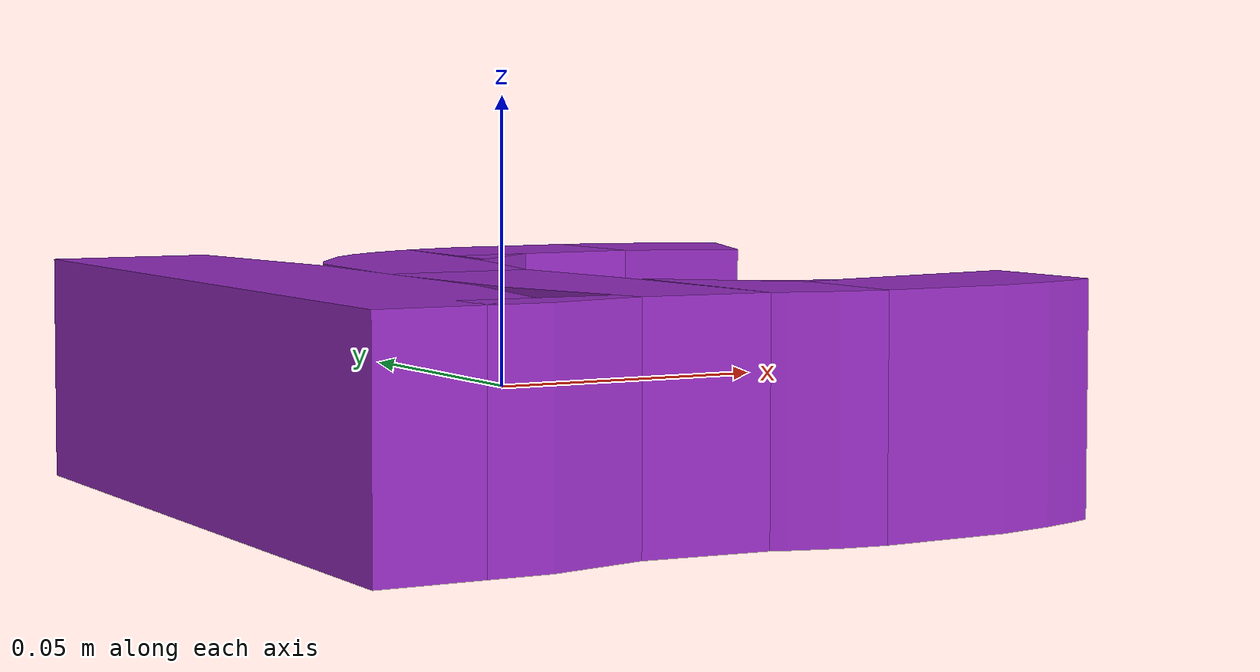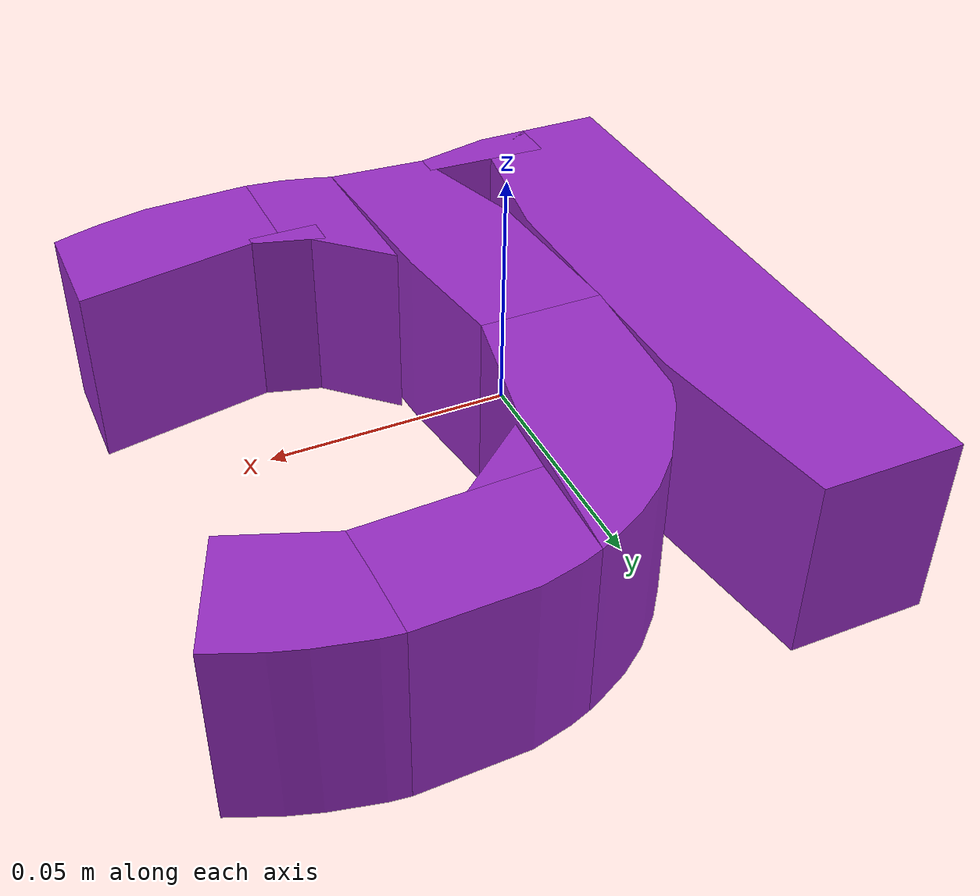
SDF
<?xml version='1.0' encoding='UTF-8'?>
<!-- This SDF was autogenerated by obj_to_drake_sdf.py -->
<sdf version="1.7">
  <model name="smaller_ic">
    <link name="smaller_ic">
      <inertial>
        <pose>0 0 0 0 0 0</pose>
        <mass>0.2</mass>
        <inertia>
          <ixx>0.00042085263</ixx>
          <iyy>0.00030391281</iyy>
          <izz>0.00067143211</izz>
          <ixy>-6.0977558e-06</ixy>
          <ixz>-3.2083033e-21</ixz>
          <iyz>-2.0051896e-21</iyz>
        </inertia>
      </inertial>
      <visual name="convex_0">
        <pose>0 0 0 0 0 0</pose>
        <geometry>
          <mesh>
            <uri>smaller_ic_convex_0.obj</uri>
          </mesh>
        </geometry>
        <material>
          <diffuse>0.5882352941176471 0.17254901960784313 0.7607843137254902 1</diffuse>
        </material>
      </visual>
      <collision name="convex_0_volume">
        <pose>0 0 0 0 0 0</pose>
        <geometry>
          <mesh>
            <uri>smaller_ic_convex_0.obj</uri>
          </mesh>
        </geometry>
        <drake:proximity_properties xmlns:drake="uri:drake">
          <drake:compliant_hydroelastic/>
          <drake:hydroelastic_modulus> 3.0e7 </drake:hydroelastic_modulus>
          <drake:mesh_resolution_hint> 0.02 </drake:mesh_resolution_hint>
          <drake:hunt_crossley_dissipation>10</drake:hunt_crossley_dissipation>
          <drake:mu_dynamic>0.5</drake:mu_dynamic>
        </drake:proximity_properties>
      </collision>
      <visual name="convex_1">
        <pose>0 0 0 0 0 0</pose>
        <geometry>
          <mesh>
            <uri>smaller_ic_convex_1.obj</uri>
          </mesh>
        </geometry>
        <material>
          <diffuse>0.5882352941176471 0.17254901960784313 0.7607843137254902 1</diffuse>
        </material>
      </visual>
      <collision name="convex_1_volume">
        <pose>0 0 0 0 0 0</pose>
        <geometry>
          <mesh>
            <uri>smaller_ic_convex_1.obj</uri>
          </mesh>
        </geometry>
        <drake:proximity_properties xmlns:drake="uri:drake">
          <drake:compliant_hydroelastic/>
          <drake:hydroelastic_modulus> 3.0e7 </drake:hydroelastic_modulus>
          <drake:mesh_resolution_hint> 0.02 </drake:mesh_resolution_hint>
          <drake:hunt_crossley_dissipation>10</drake:hunt_crossley_dissipation>
          <drake:mu_dynamic>0.5</drake:mu_dynamic>
        </drake:proximity_properties>
      </collision>
      <visual name="convex_2">
        <pose>0 0 0 0 0 0</pose>
        <geometry>
          <mesh>
            <uri>smaller_ic_convex_2.obj</uri>
          </mesh>
        </geometry>
        <material>
          <diffuse>0.5882352941176471 0.17254901960784313 0.7607843137254902 1</diffuse>
        </material>
      </visual>
      <collision name="convex_2_volume">
        <pose>0 0 0 0 0 0</pose>
        <geometry>
          <mesh>
            <uri>smaller_ic_convex_2.obj</uri>
          </mesh>
        </geometry>
        <drake:proximity_properties xmlns:drake="uri:drake">
          <drake:compliant_hydroelastic/>
          <drake:hydroelastic_modulus> 3.0e7 </drake:hydroelastic_modulus>
          <drake:mesh_resolution_hint> 0.02 </drake:mesh_resolution_hint>
          <drake:hunt_crossley_dissipation>10</drake:hunt_crossley_dissipation>
          <drake:mu_dynamic>0.5</drake:mu_dynamic>
        </drake:proximity_properties>
      </collision>
      <visual name="convex_3">
        <pose>0 0 0 0 0 0</pose>
        <geometry>
          <mesh>
            <uri>smaller_ic_convex_3.obj</uri>
          </mesh>
        </geometry>
        <material>
          <diffuse>0.5882352941176471 0.17254901960784313 0.7607843137254902 1</diffuse>
        </material>
      </visual>
      <collision name="convex_3_volume">
        <pose>0 0 0 0 0 0</pose>
        <geometry>
          <mesh>
            <uri>smaller_ic_convex_3.obj</uri>
          </mesh>
        </geometry>
        <drake:proximity_properties xmlns:drake="uri:drake">
          <drake:compliant_hydroelastic/>
          <drake:hydroelastic_modulus> 3.0e7 </drake:hydroelastic_modulus>
          <drake:mesh_resolution_hint> 0.02 </drake:mesh_resolution_hint>
          <drake:hunt_crossley_dissipation>10</drake:hunt_crossley_dissipation>
          <drake:mu_dynamic>0.5</drake:mu_dynamic>
        </drake:proximity_properties>
      </collision>
      <visual name="convex_4">
        <pose>0 0 0 0 0 0</pose>
        <geometry>
          <mesh>
            <uri>smaller_ic_convex_4.obj</uri>
          </mesh>
        </geometry>
        <material>
          <diffuse>0.5882352941176471 0.17254901960784313 0.7607843137254902 1</diffuse>
        </material>
      </visual>
      <collision name="convex_4_volume">
        <pose>0 0 0 0 0 0</pose>
        <geometry>
          <mesh>
            <uri>smaller_ic_convex_4.obj</uri>
          </mesh>
        </geometry>
        <drake:proximity_properties xmlns:drake="uri:drake">
          <drake:compliant_hydroelastic/>
          <drake:hydroelastic_modulus> 3.0e7 </drake:hydroelastic_modulus>
          <drake:mesh_resolution_hint> 0.02 </drake:mesh_resolution_hint>
          <drake:hunt_crossley_dissipation>10</drake:hunt_crossley_dissipation>
          <drake:mu_dynamic>0.5</drake:mu_dynamic>
        </drake:proximity_properties>
      </collision>
      <visual name="convex_5">
        <pose>0 0 0 0 0 0</pose>
        <geometry>
          <mesh>
            <uri>smaller_ic_convex_5.obj</uri>
          </mesh>
        </geometry>
        <material>
          <diffuse>0.5882352941176471 0.17254901960784313 0.7607843137254902 1</diffuse>
        </material>
      </visual>
      <collision name="convex_5_volume">
        <pose>0 0 0 0 0 0</pose>
        <geometry>
          <mesh>
            <uri>smaller_ic_convex_5.obj</uri>
          </mesh>
        </geometry>
        <drake:proximity_properties xmlns:drake="uri:drake">
          <drake:compliant_hydroelastic/>
          <drake:hydroelastic_modulus> 3.0e7 </drake:hydroelastic_modulus>
          <drake:mesh_resolution_hint> 0.02 </drake:mesh_resolution_hint>
          <drake:hunt_crossley_dissipation>10</drake:hunt_crossley_dissipation>
          <drake:mu_dynamic>0.5</drake:mu_dynamic>
        </drake:proximity_properties>
      </collision>
      <visual name="convex_6">
        <pose>0 0 0 0 0 0</pose>
        <geometry>
          <mesh>
            <uri>smaller_ic_convex_6.obj</uri>
          </mesh>
        </geometry>
        <material>
          <diffuse>0.5882352941176471 0.17254901960784313 0.7607843137254902 1</diffuse>
        </material>
      </visual>
      <collision name="convex_6_volume">
        <pose>0 0 0 0 0 0</pose>
        <geometry>
          <mesh>
            <uri>smaller_ic_convex_6.obj</uri>
          </mesh>
        </geometry>
        <drake:proximity_properties xmlns:drake="uri:drake">
          <drake:compliant_hydroelastic/>
          <drake:hydroelastic_modulus> 3.0e7 </drake:hydroelastic_modulus>
          <drake:mesh_resolution_hint> 0.02 </drake:mesh_resolution_hint>
          <drake:hunt_crossley_dissipation>10</drake:hunt_crossley_dissipation>
          <drake:mu_dynamic>0.5</drake:mu_dynamic>
        </drake:proximity_properties>
      </collision>
      <visual name="convex_7">
        <pose>0 0 0 0 0 0</pose>
        <geometry>
          <mesh>
            <uri>smaller_ic_convex_7.obj</uri>
          </mesh>
        </geometry>
        <material>
          <diffuse>0.5882352941176471 0.17254901960784313 0.7607843137254902 1</diffuse>
        </material>
      </visual>
      <collision name="convex_7_volume">
        <pose>0 0 0 0 0 0</pose>
        <geometry>
          <mesh>
            <uri>smaller_ic_convex_7.obj</uri>
          </mesh>
        </geometry>
        <drake:proximity_properties xmlns:drake="uri:drake">
          <drake:compliant_hydroelastic/>
          <drake:hydroelastic_modulus> 3.0e7 </drake:hydroelastic_modulus>
          <drake:mesh_resolution_hint> 0.02 </drake:mesh_resolution_hint>
          <drake:hunt_crossley_dissipation>10</drake:hunt_crossley_dissipation>
          <drake:mu_dynamic>0.5</drake:mu_dynamic>
        </drake:proximity_properties>
      </collision>
      <visual name="convex_8">
        <pose>0 0 0 0 0 0</pose>
        <geometry>
          <mesh>
            <uri>smaller_ic_convex_8.obj</uri>
          </mesh>
        </geometry>
        <material>
          <diffuse>0.5882352941176471 0.17254901960784313 0.7607843137254902 1</diffuse>
        </material>
      </visual>
      <collision name="convex_8_volume">
        <pose>0 0 0 0 0 0</pose>
        <geometry>
          <mesh>
            <uri>smaller_ic_convex_8.obj</uri>
          </mesh>
        </geometry>
        <drake:proximity_properties xmlns:drake="uri:drake">
          <drake:compliant_hydroelastic/>
          <drake:hydroelastic_modulus> 3.0e7 </drake:hydroelastic_modulus>
          <drake:mesh_resolution_hint> 0.02 </drake:mesh_resolution_hint>
          <drake:hunt_crossley_dissipation>10</drake:hunt_crossley_dissipation>
          <drake:mu_dynamic>0.5</drake:mu_dynamic>
        </drake:proximity_properties>
      </collision>
      <visual name="convex_9">
        <pose>0 0 0 0 0 0</pose>
        <geometry>
          <mesh>
            <uri>smaller_ic_convex_9.obj</uri>
          </mesh>
        </geometry>
        <material>
          <diffuse>0.5882352941176471 0.17254901960784313 0.7607843137254902 1</diffuse>
        </material>
      </visual>
      <collision name="convex_9_volume">
        <pose>0 0 0 0 0 0</pose>
        <geometry>
          <mesh>
            <uri>smaller_ic_convex_9.obj</uri>
          </mesh>
        </geometry>
        <drake:proximity_properties xmlns:drake="uri:drake">
          <drake:compliant_hydroelastic/>
          <drake:hydroelastic_modulus> 3.0e7 </drake:hydroelastic_modulus>
          <drake:mesh_resolution_hint> 0.02 </drake:mesh_resolution_hint>
          <drake:hunt_crossley_dissipation>10</drake:hunt_crossley_dissipation>
          <drake:mu_dynamic>0.5</drake:mu_dynamic>
        </drake:proximity_properties>
      </collision>
    </link>
  </model>
</sdf>
